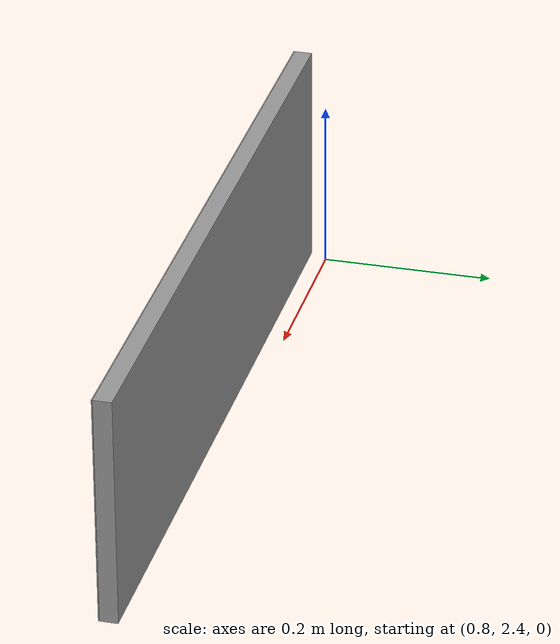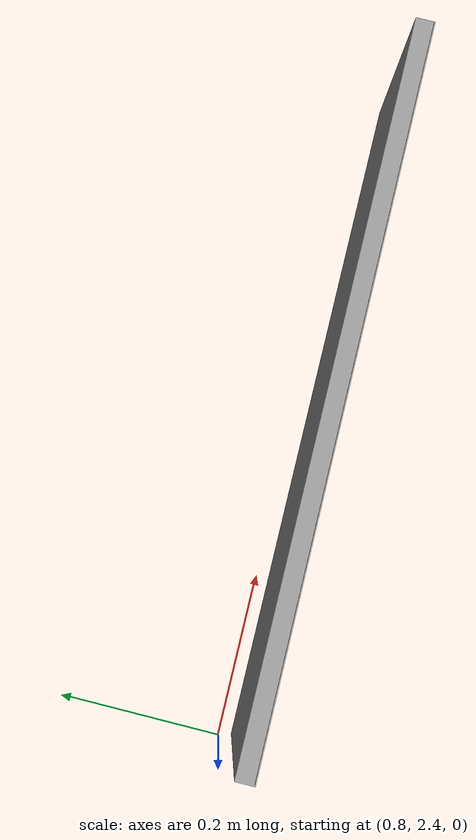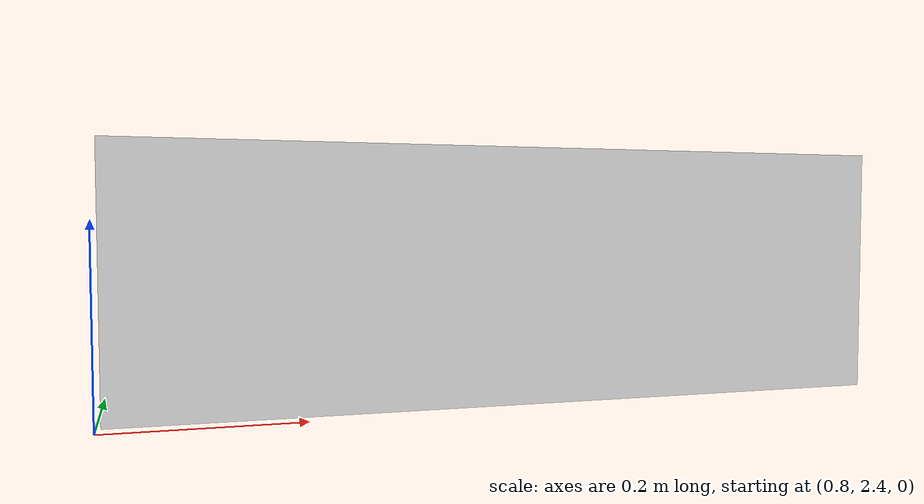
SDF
<?xml version='1.0'?>
<sdf version='1.7'>
  <model name='7'>
    <static>true</static>

    <pose>1.215160 2.375410 0.142804 0 0 -3.141593</pose>

    <link name='link_5'>
      <pose>0 0 0 0 0 0</pose>

      <visual name='visual'>
        <geometry>
          <box>
            <size>0.815204 0.020098 0.262382</size>
          </box>
        </geometry>
        <material>
          <script>
            <uri>file://media/materials/scripts/gazebo.material</uri>
            <name>Gazebo/Grey</name>
          </script>
        </material>
      </visual>

      <visual name='signboard_visual'>
        <pose>0 0.011 0 0 0 0</pose>
        <geometry>
          <box>
            <size>0.815204 0.001 0.262382</size>
          </box>
        </geometry>
        <material>
          <script>
            <uri>model://7/materials/scripts</uri>
            <uri>model://7/materials/textures</uri>
            <name>Model_7/Texture</name>
          </script>
        </material>
      </visual>

    </link>
    <allow_auto_disable>1</allow_auto_disable>
  </model>
</sdf>
